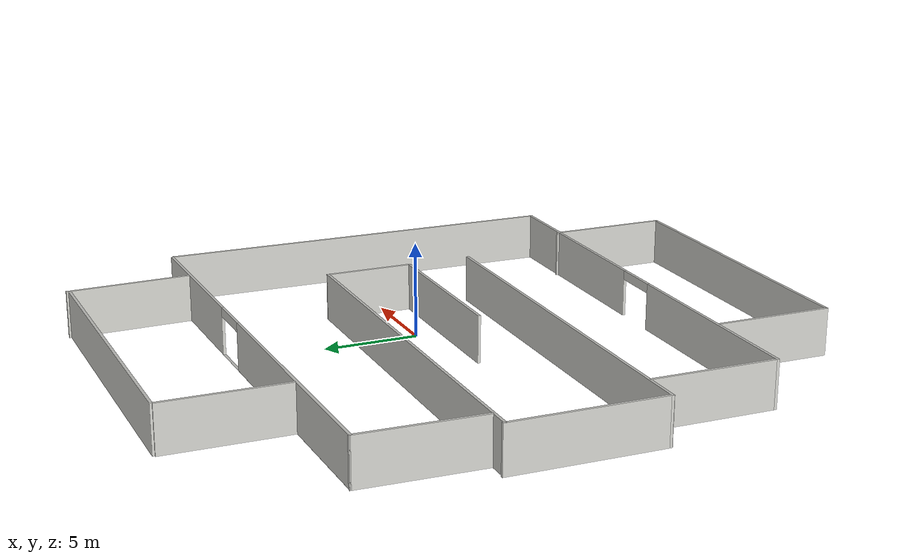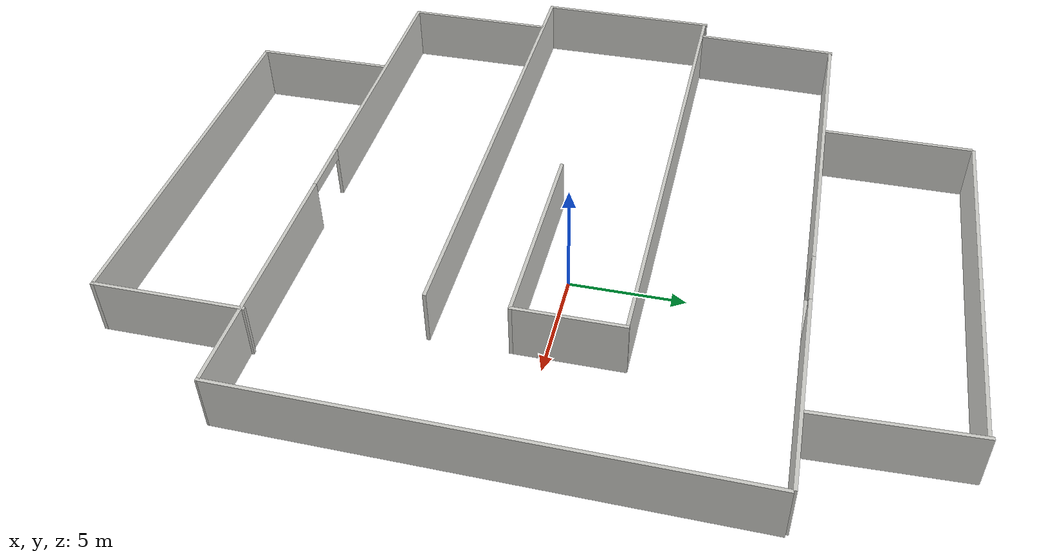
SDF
<?xml version='1.0'?>
<sdf version='1.6'>
  <model name='house_model'>
    <pose frame=''>-3.63097 -0.64572 0 0 -0 0</pose>
    <link name='Wall_27'>
      <collision name='Wall_27_Collision'>
        <geometry>
          <box>
            <size>6.75 0.15 2.5</size>
          </box>
        </geometry>
        <pose frame=''>0 0 1.25 0 -0 0</pose>
      </collision>
      <visual name='Wall_27_Visual'>
        <pose frame=''>0 0 1.25 0 -0 0</pose>
        <geometry>
          <box>
            <size>6.75 0.15 2.5</size>
          </box>
        </geometry>
        <material>
          <script>
            <uri>file://media/materials/scripts/gazebo.material</uri>
            <name>Gazebo/CeilingTiled</name>
          </script>
          <ambient>1 1 1 1</ambient>
        </material>
        <meta>
          <layer>0</layer>
        </meta>
      </visual>
      <pose frame=''>-12.1446 -7.56813 0 0 -0 -1.5708</pose>
    </link>
    <link name='Wall_28'>
      <pose frame=''>0.905373 -10.8681 0 0 -0 0</pose>
      <visual name='Wall_28_Visual_0'>
        <pose frame=''>-7.03797 0 1.25 0 -0 0</pose>
        <geometry>
          <box>
            <size>12.1741 0.15 2.5</size>
          </box>
        </geometry>
        <material>
          <script>
            <uri>file://media/materials/scripts/gazebo.material</uri>
            <name>Gazebo/CeilingTiled</name>
          </script>
          <ambient>0.541176 0.886275 0.203922 1</ambient>
        </material>
        <meta>
          <layer>0</layer>
        </meta>
      </visual>
      <collision name='Wall_28_Collision_0'>
        <geometry>
          <box>
            <size>12.1741 0.15 2.5</size>
          </box>
        </geometry>
        <pose frame=''>-7.03797 0 1.25 0 -0 0</pose>
      </collision>
      <visual name='Wall_28_Visual_1'>
        <pose frame=''>7.33703 0 1.25 0 -0 0</pose>
        <geometry>
          <box>
            <size>11.5759 0.15 2.5</size>
          </box>
        </geometry>
        <material>
          <script>
            <uri>file://media/materials/scripts/gazebo.material</uri>
            <name>Gazebo/CeilingTiled</name>
          </script>
          <ambient>0.541176 0.886275 0.203922 1</ambient>
        </material>
        <meta>
          <layer>0</layer>
        </meta>
      </visual>
      <collision name='Wall_28_Collision_1'>
        <geometry>
          <box>
            <size>11.5759 0.15 2.5</size>
          </box>
        </geometry>
        <pose frame=''>7.33703 0 1.25 0 -0 0</pose>
      </collision>
      <visual name='Wall_28_Visual_2'>
        <pose frame=''>0.299061 0 2.25 0 -0 0</pose>
        <geometry>
          <box>
            <size>2.5 0.15 0.5</size>
          </box>
        </geometry>
        <material>
          <script>
            <uri>file://media/materials/scripts/gazebo.material</uri>
            <name>Gazebo/CeilingTiled</name>
          </script>
          <ambient>0.541176 0.886275 0.203922 1</ambient>
        </material>
        <meta>
          <layer>0</layer>
        </meta>
      </visual>
      <collision name='Wall_28_Collision_2'>
        <geometry>
          <box>
            <size>2.5 0.15 0.5</size>
          </box>
        </geometry>
        <pose frame=''>0.299061 0 2.25 0 -0 0</pose>
      </collision>
    </link>
    <link name='Wall_30'>
      <collision name='Wall_30_Collision'>
        <geometry>
          <box>
            <size>21.5359 0.15 2.5</size>
          </box>
        </geometry>
        <pose frame=''>0 0 1.25 0 -0 0</pose>
      </collision>
      <visual name='Wall_30_Visual'>
        <pose frame=''>0 0 1.25 0 -0 0</pose>
        <geometry>
          <box>
            <size>21.5359 0.15 2.5</size>
          </box>
        </geometry>
        <material>
          <script>
            <uri>file://media/materials/scripts/gazebo.material</uri>
            <name>Gazebo/CeilingTiled</name>
          </script>
          <ambient>1 1 1 1</ambient>
        </material>
        <meta>
          <layer>0</layer>
        </meta>
      </visual>
      <pose frame=''>14.063 -0.175742 0 0 -0 1.56073</pose>
    </link>
    <link name='Wall_31'>
      <pose frame=''>0.582514 10.4696 0 0 -0 -3.13012</pose>
      <visual name='Wall_31_Visual_0'>
        <pose frame=''>-8.9322 0 1.25 0 -0 0</pose>
        <geometry>
          <box>
            <size>9.24803 0.15 2.5</size>
          </box>
        </geometry>
        <material>
          <script>
            <uri>file://media/materials/scripts/gazebo.material</uri>
            <name>Gazebo/CeilingTiled</name>
          </script>
          <ambient>0.541176 0.886275 0.203922 1</ambient>
        </material>
        <meta>
          <layer>0</layer>
        </meta>
      </visual>
      <collision name='Wall_31_Collision_0'>
        <geometry>
          <box>
            <size>9.24803 0.15 2.5</size>
          </box>
        </geometry>
        <pose frame=''>-8.9322 0 1.25 0 -0 0</pose>
      </collision>
      <visual name='Wall_31_Visual_1'>
        <pose frame=''>4.62401 0 0.002 0 -0 0</pose>
        <geometry>
          <box>
            <size>17.8644 0.15 0.004</size>
          </box>
        </geometry>
        <material>
          <script>
            <uri>file://media/materials/scripts/gazebo.material</uri>
            <name>Gazebo/CeilingTiled</name>
          </script>
          <ambient>0.541176 0.886275 0.203922 1</ambient>
        </material>
        <meta>
          <layer>0</layer>
        </meta>
      </visual>
      <collision name='Wall_31_Collision_1'>
        <geometry>
          <box>
            <size>17.8644 0.15 0.004</size>
          </box>
        </geometry>
        <pose frame=''>4.62401 0 0.002 0 -0 0</pose>
      </collision>
      <visual name='Wall_31_Visual_2'>
        <pose frame=''>5.87401 0 1.252 0 -0 0</pose>
        <geometry>
          <box>
            <size>15.3644 0.15 2.496</size>
          </box>
        </geometry>
        <material>
          <script>
            <uri>file://media/materials/scripts/gazebo.material</uri>
            <name>Gazebo/CeilingTiled</name>
          </script>
          <ambient>0.541176 0.886275 0.203922 1</ambient>
        </material>
        <meta>
          <layer>0</layer>
        </meta>
      </visual>
      <collision name='Wall_31_Collision_2'>
        <geometry>
          <box>
            <size>15.3644 0.15 2.496</size>
          </box>
        </geometry>
        <pose frame=''>5.87401 0 1.252 0 -0 0</pose>
      </collision>
      <visual name='Wall_31_Visual_3'>
        <pose frame=''>-3.05819 0 2.257 0 -0 0</pose>
        <geometry>
          <box>
            <size>2.5 0.15 0.486</size>
          </box>
        </geometry>
        <material>
          <script>
            <uri>file://media/materials/scripts/gazebo.material</uri>
            <name>Gazebo/CeilingTiled</name>
          </script>
          <ambient>0.541176 0.886275 0.203922 1</ambient>
        </material>
        <meta>
          <layer>0</layer>
        </meta>
      </visual>
      <collision name='Wall_31_Collision_3'>
        <geometry>
          <box>
            <size>2.5 0.15 0.486</size>
          </box>
        </geometry>
        <pose frame=''>-3.05819 0 2.257 0 -0 0</pose>
      </collision>
    </link>
    <link name='Wall_32'>
      <collision name='Wall_32_Collision'>
        <geometry>
          <box>
            <size>6.53662 0.15 2.5</size>
          </box>
        </geometry>
        <pose frame=''>0 0 1.25 0 -0 0</pose>
      </collision>
      <visual name='Wall_32_Visual'>
        <pose frame=''>0 0 1.25 0 -0 0</pose>
        <geometry>
          <box>
            <size>6.53662 0.15 2.5</size>
          </box>
        </geometry>
        <material>
          <script>
            <uri>file://media/materials/scripts/gazebo.material</uri>
            <name>Gazebo/CeilingTiled</name>
          </script>
          <ambient>1 1 1 1</ambient>
        </material>
        <meta>
          <layer>0</layer>
        </meta>
      </visual>
      <pose frame=''>-12.9748 7.14921 0 0 -0 -1.59486</pose>
    </link>
    <link name='Wall_34'>
      <collision name='Wall_34_Collision'>
        <geometry>
          <box>
            <size>6.25 0.15 2.5</size>
          </box>
        </geometry>
        <pose frame=''>0 0 1.25 0 -0 0</pose>
      </collision>
      <visual name='Wall_34_Visual'>
        <pose frame=''>0 0 1.25 0 -0 0</pose>
        <geometry>
          <box>
            <size>6.25 0.15 2.5</size>
          </box>
        </geometry>
        <material>
          <script>
            <uri>file://media/materials/scripts/gazebo.material</uri>
            <name>Gazebo/CeilingTiled</name>
          </script>
          <ambient>1 1 1 1</ambient>
        </material>
        <meta>
          <layer>0</layer>
        </meta>
      </visual>
      <pose frame=''>-6.89205 -14.0674 0 0 -0 -1.5708</pose>
    </link>
    <link name='Wall_35'>
      <collision name='Wall_35_Collision'>
        <geometry>
          <box>
            <size>17.25 0.15 2.5</size>
          </box>
        </geometry>
        <pose frame=''>0 0 1.25 0 -0 0</pose>
      </collision>
      <visual name='Wall_35_Visual'>
        <pose frame=''>0 0 1.25 0 -0 0</pose>
        <geometry>
          <box>
            <size>17.25 0.15 2.5</size>
          </box>
        </geometry>
        <material>
          <script>
            <uri>file://media/materials/scripts/gazebo.material</uri>
            <name>Gazebo/CeilingTiled</name>
          </script>
          <ambient>0.541176 0.886275 0.203922 1</ambient>
        </material>
        <meta>
          <layer>0</layer>
        </meta>
      </visual>
      <pose frame=''>1.65795 -17.1174 0 0 -0 0</pose>
    </link>
    <link name='Wall_36'>
      <collision name='Wall_36_Collision'>
        <geometry>
          <box>
            <size>6.5 0.15 2.5</size>
          </box>
        </geometry>
        <pose frame=''>0 0 1.25 0 -0 0</pose>
      </collision>
      <visual name='Wall_36_Visual'>
        <pose frame=''>0 0 1.25 0 -0 0</pose>
        <geometry>
          <box>
            <size>6.5 0.15 2.5</size>
          </box>
        </geometry>
        <material>
          <script>
            <uri>file://media/materials/scripts/gazebo.material</uri>
            <name>Gazebo/CeilingTiled</name>
          </script>
          <ambient>1 1 1 1</ambient>
        </material>
        <meta>
          <layer>0</layer>
        </meta>
      </visual>
      <pose frame=''>10.2079 -13.9424 0 0 -0 1.5708</pose>
    </link>
    <link name='Wall_38'>
      <collision name='Wall_38_Collision'>
        <geometry>
          <box>
            <size>6.5 0.15 2.5</size>
          </box>
        </geometry>
        <pose frame=''>0 0 1.25 0 -0 0</pose>
      </collision>
      <visual name='Wall_38_Visual'>
        <pose frame=''>0 0 1.25 0 -0 0</pose>
        <geometry>
          <box>
            <size>6.5 0.15 2.5</size>
          </box>
        </geometry>
        <material>
          <script>
            <uri>file://media/materials/scripts/gazebo.material</uri>
            <name>Gazebo/CeilingTiled</name>
          </script>
          <ambient>1 1 1 1</ambient>
        </material>
        <meta>
          <layer>0</layer>
        </meta>
      </visual>
      <pose frame=''>-6.25789 13.7146 0 0 -0 1.5708</pose>
    </link>
    <link name='Wall_40'>
      <collision name='Wall_40_Collision'>
        <geometry>
          <box>
            <size>16.6457 0.15 2.5</size>
          </box>
        </geometry>
        <pose frame=''>0 0 1.25 0 -0 0</pose>
      </collision>
      <visual name='Wall_40_Visual'>
        <pose frame=''>0 0 1.25 0 -0 0</pose>
        <geometry>
          <box>
            <size>16.6457 0.15 2.5</size>
          </box>
        </geometry>
        <material>
          <script>
            <uri>file://media/materials/scripts/gazebo.material</uri>
            <name>Gazebo/CeilingTiled</name>
          </script>
          <ambient>0.541176 0.886275 0.203922 1</ambient>
        </material>
        <meta>
          <layer>0</layer>
        </meta>
      </visual>
      <pose frame=''>2.07618 17.0073 0 0 -0 0</pose>
    </link>
    <link name='Wall_41'>
      <collision name='Wall_41_Collision'>
        <geometry>
          <box>
            <size>6.53512 0.15 2.5</size>
          </box>
        </geometry>
        <pose frame=''>0 0 1.25 0 -0 0</pose>
      </collision>
      <visual name='Wall_41_Visual'>
        <pose frame=''>0 0 1.25 0 -0 0</pose>
        <geometry>
          <box>
            <size>6.53512 0.15 2.5</size>
          </box>
        </geometry>
        <material>
          <script>
            <uri>file://media/materials/scripts/gazebo.material</uri>
            <name>Gazebo/CeilingTiled</name>
          </script>
          <ambient>1 1 1 1</ambient>
        </material>
        <meta>
          <layer>0</layer>
        </meta>
      </visual>
      <pose frame=''>10.5392 13.9242 0 0 -0 -1.53708</pose>
    </link>
    <link name='Wall_43'>
      <collision name='Wall_43_Collision'>
        <geometry>
          <box>
            <size>4.75 0.15 2.5</size>
          </box>
        </geometry>
        <pose frame=''>0 0 1.25 0 -0 0</pose>
      </collision>
      <visual name='Wall_43_Visual'>
        <pose frame=''>0 0 1.25 0 -0 0</pose>
        <geometry>
          <box>
            <size>4.75 0.15 2.5</size>
          </box>
        </geometry>
        <material>
          <script>
            <uri>file://media/materials/scripts/gazebo.material</uri>
            <name>Gazebo/CeilingTiled</name>
          </script>
          <ambient>1 1 1 1</ambient>
        </material>
        <meta>
          <layer>0</layer>
        </meta>
      </visual>
      <pose frame=''>7.92897 1.55919 0 0 -0 -1.5708</pose>
    </link>
    <link name='Wall_44'>
      <collision name='Wall_44_Collision'>
        <geometry>
          <box>
            <size>9.25 0.15 2.5</size>
          </box>
        </geometry>
        <pose frame=''>0 0 1.25 0 -0 0</pose>
      </collision>
      <visual name='Wall_44_Visual'>
        <pose frame=''>0 0 1.25 0 -0 0</pose>
        <geometry>
          <box>
            <size>9.25 0.15 2.5</size>
          </box>
        </geometry>
        <material>
          <script>
            <uri>file://media/materials/scripts/gazebo.material</uri>
            <name>Gazebo/CeilingTiled</name>
          </script>
          <ambient>0.541176 0.886275 0.203922 1</ambient>
        </material>
        <meta>
          <layer>0</layer>
        </meta>
      </visual>
      <pose frame=''>3.37897 -0.740807 0 0 -0 3.14159</pose>
    </link>
    <link name='Wall_6'>
      <collision name='Wall_6_Collision'>
        <geometry>
          <box>
            <size>22.25 0.15 2.5</size>
          </box>
        </geometry>
        <pose frame=''>0 0 1.25 0 -0 0</pose>
      </collision>
      <visual name='Wall_6_Visual'>
        <pose frame=''>0 0 1.25 0 -0 0</pose>
        <geometry>
          <box>
            <size>22.25 0.15 2.5</size>
          </box>
        </geometry>
        <material>
          <script>
            <uri>file://media/materials/scripts/gazebo.material</uri>
            <name>Gazebo/CeilingTiled</name>
          </script>
          <ambient>0.541176 0.886275 0.203922 1</ambient>
        </material>
        <meta>
          <layer>0</layer>
        </meta>
      </visual>
      <pose frame=''>-3.12135 -4.17923 0 0 -0 3.14159</pose>
    </link>
    <link name='Wall_7'>
      <collision name='Wall_7_Collision'>
        <geometry>
          <box>
            <size>8.24995 0.15 2.5</size>
          </box>
        </geometry>
        <pose frame=''>0 0 1.25 0 -0 0</pose>
      </collision>
      <visual name='Wall_7_Visual'>
        <pose frame=''>0 0 1.25 0 -0 0</pose>
        <geometry>
          <box>
            <size>8.24995 0.15 2.5</size>
          </box>
        </geometry>
        <material>
          <script>
            <uri>file://media/materials/scripts/gazebo.material</uri>
            <name>Gazebo/CeilingTiled</name>
          </script>
          <ambient>1 1 1 1</ambient>
        </material>
        <meta>
          <layer>0</layer>
        </meta>
      </visual>
      <pose frame=''>-14.1712 -0.129256 0 0 -0 1.57076</pose>
    </link>
    <link name='Wall_9'>
      <collision name='Wall_9_Collision'>
        <geometry>
          <box>
            <size>22.25 0.15 2.5</size>
          </box>
        </geometry>
        <pose frame=''>0 0 1.25 0 -0 0</pose>
      </collision>
      <visual name='Wall_9_Visual'>
        <pose frame=''>0 0 1.25 0 -0 0</pose>
        <geometry>
          <box>
            <size>22.25 0.15 2.5</size>
          </box>
        </geometry>
        <material>
          <script>
            <uri>file://media/materials/scripts/gazebo.material</uri>
            <name>Gazebo/CeilingTiled</name>
          </script>
          <ambient>0.541176 0.886275 0.203922 1</ambient>
        </material>
        <meta>
          <layer>0</layer>
        </meta>
      </visual>
      <pose frame=''>-3.12103 3.85919 0 0 -0 0</pose>
    </link>
    <static>1</static>
  </model>
</sdf>
